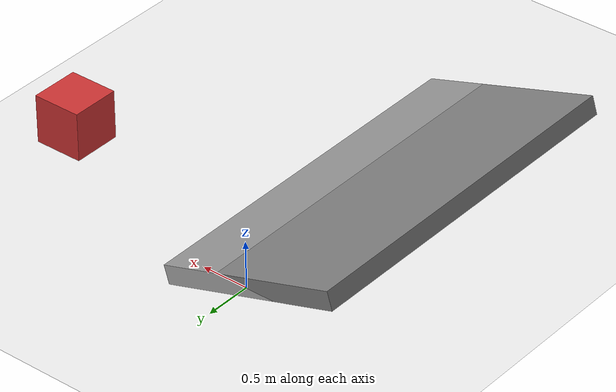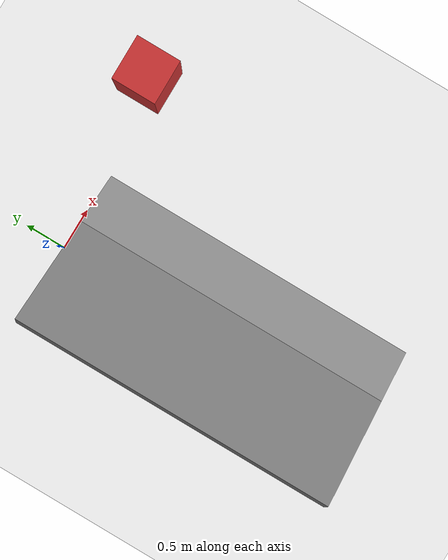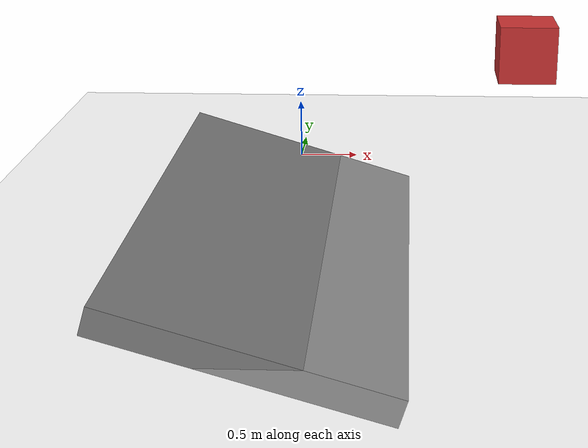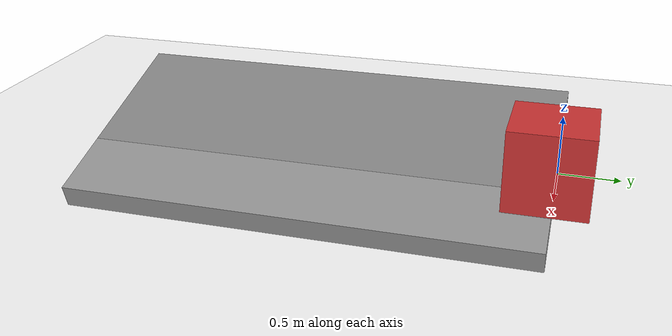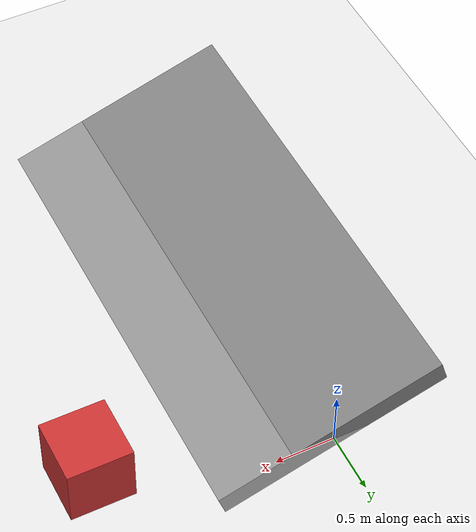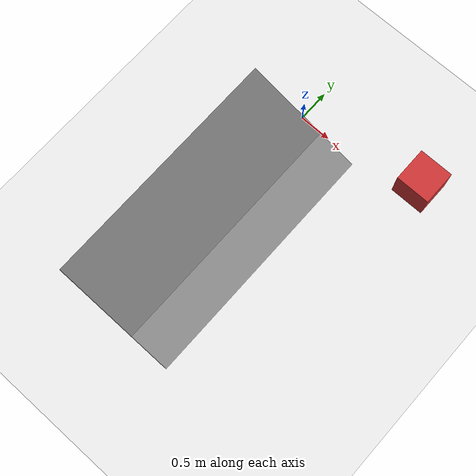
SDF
<?xml version="1.0" ?>
<sdf version="1.7">
  <world name="basic_physics">
    <!-- Include the default ground plane -->
    <include>
      <uri>model://ground_plane</uri>
    </include>

    <!-- Include the default sun -->
    <include>
      <uri>model://sun</uri>
    </include>

    <!-- Physics engine configuration -->
    <physics type="ode">
      <gravity>0 0 -9.8</gravity>
      <max_step_size>0.001</max_step_size>
      <real_time_factor>1.0</real_time_factor>
      <real_time_update_rate>1000.0</real_time_update_rate>
      <max_contacts>10</max_contacts>

      <!-- ODE specific parameters -->
      <ode>
        <solver>
          <type>quick</type>
          <iters>10</iters>
          <sor>1.3</sor>
        </solver>
        <constraints>
          <cfm>0.0</cfm>
          <erp>0.2</erp>
          <contact_max_correcting_vel>100.0</contact_max_correcting_vel>
          <contact_surface_layer>0.001</contact_surface_layer>
        </constraints>
      </ode>
    </physics>

    <!-- Add a simple box for testing collisions -->
    <model name="test_box">
      <pose>2 0 1 0 0 0</pose>
      <link name="link">
        <collision name="collision">
          <geometry>
            <box>
              <size>0.5 0.5 0.5</size>
            </box>
          </geometry>
        </collision>
        <visual name="visual">
          <geometry>
            <box>
              <size>0.5 0.5 0.5</size>
            </box>
          </geometry>
          <material>
            <ambient>0.8 0.2 0.2 1</ambient>
            <diffuse>0.8 0.2 0.2 1</diffuse>
            <specular>0.8 0.2 0.2 1</specular>
          </material>
        </visual>
        <inertial>
          <mass>1.0</mass>
          <inertia>
            <ixx>0.083</ixx>
            <ixy>0.0</ixy>
            <ixz>0.0</ixz>
            <iyy>0.083</iyy>
            <iyz>0.0</iyz>
            <izz>0.083</izz>
          </inertia>
        </inertial>
      </link>
    </model>

    <!-- Add a simple ramp for testing physics interactions -->
    <model name="ramp">
      <pose>0 -2 0 0 0.3 0</pose>
      <link name="link">
        <collision name="collision">
          <geometry>
            <box>
              <size>2 4 0.2</size>
            </box>
          </geometry>
        </collision>
        <visual name="visual">
          <geometry>
            <box>
              <size>2 4 0.2</size>
            </box>
          </geometry>
          <material>
            <ambient>0.5 0.5 0.5 1</ambient>
            <diffuse>0.5 0.5 0.5 1</diffuse>
            <specular>0.5 0.5 0.5 1</specular>
          </material>
        </visual>
        <inertial>
          <mass>10.0</mass>
          <inertia>
            <ixx>13.33</ixx>
            <ixy>0.0</ixy>
            <ixz>0.0</ixz>
            <iyy>3.33</iyy>
            <iyz>0.0</iyz>
            <izz>16.67</izz>
          </inertia>
        </inertial>
      </link>
    </model>

  </world>
</sdf>
